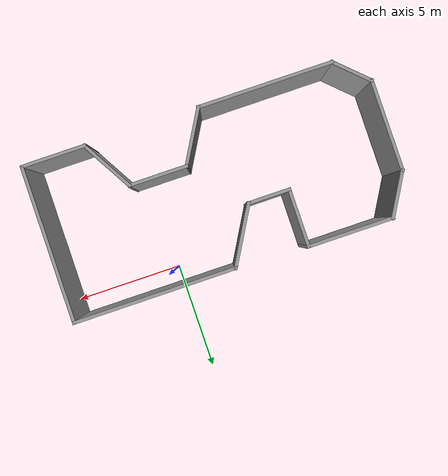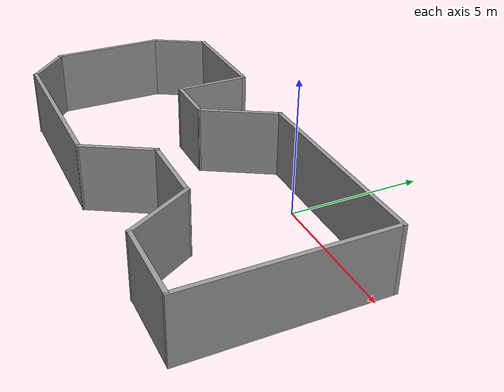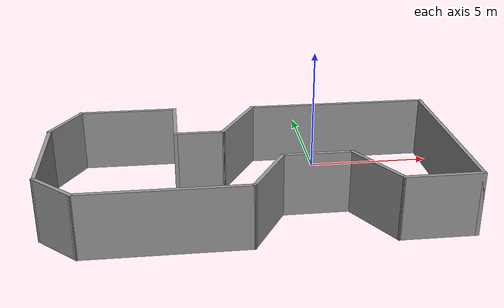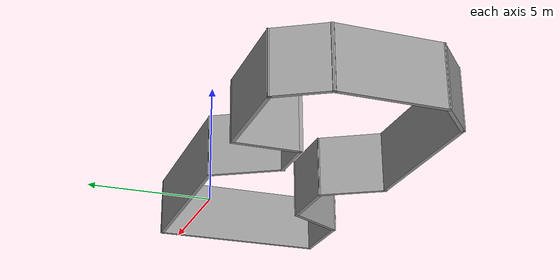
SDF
<?xml version='1.0'?>
<sdf version='1.7'>
  <model name='Custom_wall_v1'>
    <pose>-2.92727 -2.71778 0 0 -0 0</pose>
    <link name='Wall_43'>
      <collision name='Wall_43_Collision'>
        <geometry>
          <box>
            <size>6.25 0.15 2.5</size>
          </box>
        </geometry>
        <pose>0 0 1.25 0 -0 0</pose>
      </collision>
      <visual name='Wall_43_Visual'>
        <pose>0 0 1.25 0 -0 0</pose>
        <geometry>
          <box>
            <size>6.25 0.15 2.5</size>
          </box>
        </geometry>
        <material>
          <script>
            <uri>file://media/materials/scripts/gazebo.material</uri>
            <name>Gazebo/Grey</name>
          </script>
          <ambient>1 1 1 1</ambient>
        </material>
        <meta>
          <layer>0</layer>
        </meta>
      </visual>
      <pose>-3.32198 -3.61412 0 0 -0 0</pose>
    </link>
    <link name='Wall_44'>
      <collision name='Wall_44_Collision'>
        <geometry>
          <box>
            <size>2.75 0.15 2.5</size>
          </box>
        </geometry>
        <pose>0 0 1.25 0 -0 0</pose>
      </collision>
      <visual name='Wall_44_Visual'>
        <pose>0 0 1.25 0 -0 0</pose>
        <geometry>
          <box>
            <size>2.75 0.15 2.5</size>
          </box>
        </geometry>
        <material>
          <script>
            <uri>file://media/materials/scripts/gazebo.material</uri>
            <name>Gazebo/Grey</name>
          </script>
          <ambient>1 1 1 1</ambient>
        </material>
        <meta>
          <layer>0</layer>
        </meta>
      </visual>
      <pose>0.378019 -2.48829 0 0 -0 1.0472</pose>
    </link>
    <link name='Wall_45'>
      <collision name='Wall_45_Collision'>
        <geometry>
          <box>
            <size>2.75 0.15 2.5</size>
          </box>
        </geometry>
        <pose>0 0 1.25 0 -0 0</pose>
      </collision>
      <visual name='Wall_45_Visual'>
        <pose>0 0 1.25 0 -0 0</pose>
        <geometry>
          <box>
            <size>2.75 0.15 2.5</size>
          </box>
        </geometry>
        <material>
          <script>
            <uri>file://media/materials/scripts/gazebo.material</uri>
            <name>Gazebo/Grey</name>
          </script>
          <ambient>1 1 1 1</ambient>
        </material>
        <meta>
          <layer>0</layer>
        </meta>
      </visual>
      <pose>2.32802 -1.36245 0 0 -0 0</pose>
    </link>
    <link name='Wall_46'>
      <collision name='Wall_46_Collision'>
        <geometry>
          <box>
            <size>2.75 0.15 2.5</size>
          </box>
        </geometry>
        <pose>0 0 1.25 0 -0 0</pose>
      </collision>
      <visual name='Wall_46_Visual'>
        <pose>0 0 1.25 0 -0 0</pose>
        <geometry>
          <box>
            <size>2.75 0.15 2.5</size>
          </box>
        </geometry>
        <material>
          <script>
            <uri>file://media/materials/scripts/gazebo.material</uri>
            <name>Gazebo/Grey</name>
          </script>
          <ambient>1 1 1 1</ambient>
        </material>
        <meta>
          <layer>0</layer>
        </meta>
      </visual>
      <pose>4.27802 -2.48829 0 0 -0 -1.0472</pose>
    </link>
    <link name='Wall_47'>
      <collision name='Wall_47_Collision'>
        <geometry>
          <box>
            <size>3 0.15 2.5</size>
          </box>
        </geometry>
        <pose>0 0 1.25 0 -0 0</pose>
      </collision>
      <visual name='Wall_47_Visual'>
        <pose>0 0 1.25 0 -0 0</pose>
        <geometry>
          <box>
            <size>3 0.15 2.5</size>
          </box>
        </geometry>
        <material>
          <script>
            <uri>file://media/materials/scripts/gazebo.material</uri>
            <name>Gazebo/Grey</name>
          </script>
          <ambient>1 1 1 1</ambient>
        </material>
        <meta>
          <layer>0</layer>
        </meta>
      </visual>
      <pose>6.35302 -3.61412 0 0 -0 0</pose>
    </link>
    <link name='Wall_48'>
      <collision name='Wall_48_Collision'>
        <geometry>
          <box>
            <size>7.25 0.15 2.5</size>
          </box>
        </geometry>
        <pose>0 0 1.25 0 -0 0</pose>
      </collision>
      <visual name='Wall_48_Visual'>
        <pose>0 0 1.25 0 -0 0</pose>
        <geometry>
          <box>
            <size>7.25 0.15 2.5</size>
          </box>
        </geometry>
        <material>
          <script>
            <uri>file://media/materials/scripts/gazebo.material</uri>
            <name>Gazebo/Grey</name>
          </script>
          <ambient>1 1 1 1</ambient>
        </material>
        <meta>
          <layer>0</layer>
        </meta>
      </visual>
      <pose>7.77802 -0.064121 0 0 -0 1.5708</pose>
    </link>
    <link name='Wall_49'>
      <collision name='Wall_49_Collision'>
        <geometry>
          <box>
            <size>7.5 0.15 2.5</size>
          </box>
        </geometry>
        <pose>0 0 1.25 0 -0 0</pose>
      </collision>
      <visual name='Wall_49_Visual'>
        <pose>0 0 1.25 0 -0 0</pose>
        <geometry>
          <box>
            <size>7.5 0.15 2.5</size>
          </box>
        </geometry>
        <material>
          <script>
            <uri>file://media/materials/scripts/gazebo.material</uri>
            <name>Gazebo/Grey</name>
          </script>
          <ambient>1 1 1 1</ambient>
        </material>
        <meta>
          <layer>0</layer>
        </meta>
      </visual>
      <pose>4.10302 3.48588 0 0 -0 3.14159</pose>
    </link>
    <link name='Wall_50'>
      <collision name='Wall_50_Collision'>
        <geometry>
          <box>
            <size>3 0.15 2.5</size>
          </box>
        </geometry>
        <pose>0 0 1.25 0 -0 0</pose>
      </collision>
      <visual name='Wall_50_Visual'>
        <pose>0 0 1.25 0 -0 0</pose>
        <geometry>
          <box>
            <size>3 0.15 2.5</size>
          </box>
        </geometry>
        <material>
          <script>
            <uri>file://media/materials/scripts/gazebo.material</uri>
            <name>Gazebo/Grey</name>
          </script>
          <ambient>1 1 1 1</ambient>
        </material>
        <meta>
          <layer>0</layer>
        </meta>
      </visual>
      <pose>-0.284481 2.25179 0 0 -0 -2.0944</pose>
    </link>
    <link name='Wall_51'>
      <collision name='Wall_51_Collision'>
        <geometry>
          <box>
            <size>2 0.15 2.5</size>
          </box>
        </geometry>
        <pose>0 0 1.25 0 -0 0</pose>
      </collision>
      <visual name='Wall_51_Visual'>
        <pose>0 0 1.25 0 -0 0</pose>
        <geometry>
          <box>
            <size>2 0.15 2.5</size>
          </box>
        </geometry>
        <material>
          <script>
            <uri>file://media/materials/scripts/gazebo.material</uri>
            <name>Gazebo/Grey</name>
          </script>
          <ambient>1 1 1 1</ambient>
        </material>
        <meta>
          <layer>0</layer>
        </meta>
      </visual>
      <pose>-1.92198 1.01771 0 0 -0 3.14159</pose>
    </link>
    <link name='Wall_52'>
      <collision name='Wall_52_Collision'>
        <geometry>
          <box>
            <size>2.75 0.15 2.5</size>
          </box>
        </geometry>
        <pose>0 0 1.25 0 -0 0</pose>
      </collision>
      <visual name='Wall_52_Visual'>
        <pose>0 0 1.25 0 -0 0</pose>
        <geometry>
          <box>
            <size>2.75 0.15 2.5</size>
          </box>
        </geometry>
        <material>
          <script>
            <uri>file://media/materials/scripts/gazebo.material</uri>
            <name>Gazebo/Grey</name>
          </script>
          <ambient>1 1 1 1</ambient>
        </material>
        <meta>
          <layer>0</layer>
        </meta>
      </visual>
      <pose>-2.84698 2.31771 0 0 -0 1.5708</pose>
    </link>
    <link name='Wall_53'>
      <collision name='Wall_53_Collision'>
        <geometry>
          <box>
            <size>4 0.15 2.5</size>
          </box>
        </geometry>
        <pose>0 0 1.25 0 -0 0</pose>
      </collision>
      <visual name='Wall_53_Visual'>
        <pose>0 0 1.25 0 -0 0</pose>
        <geometry>
          <box>
            <size>4 0.15 2.5</size>
          </box>
        </geometry>
        <material>
          <script>
            <uri>file://media/materials/scripts/gazebo.material</uri>
            <name>Gazebo/Grey</name>
          </script>
          <ambient>1 1 1 1</ambient>
        </material>
        <meta>
          <layer>0</layer>
        </meta>
      </visual>
      <pose>-4.77198 3.61771 0 0 -0 3.14159</pose>
    </link>
    <link name='Wall_54'>
      <collision name='Wall_54_Collision'>
        <geometry>
          <box>
            <size>2.25 0.15 2.5</size>
          </box>
        </geometry>
        <pose>0 0 1.25 0 -0 0</pose>
      </collision>
      <visual name='Wall_54_Visual'>
        <pose>0 0 1.25 0 -0 0</pose>
        <geometry>
          <box>
            <size>2.25 0.15 2.5</size>
          </box>
        </geometry>
        <material>
          <script>
            <uri>file://media/materials/scripts/gazebo.material</uri>
            <name>Gazebo/Grey</name>
          </script>
          <ambient>1 1 1 1</ambient>
        </material>
        <meta>
          <layer>0</layer>
        </meta>
      </visual>
      <pose>-7.22198 2.70838 0 0 -0 -2.0944</pose>
    </link>
    <link name='Wall_55'>
      <collision name='Wall_55_Collision'>
        <geometry>
          <box>
            <size>4.25 0.15 2.5</size>
          </box>
        </geometry>
        <pose>0 0 1.25 0 -0 0</pose>
      </collision>
      <visual name='Wall_55_Visual'>
        <pose>0 0 1.25 0 -0 0</pose>
        <geometry>
          <box>
            <size>4.25 0.15 2.5</size>
          </box>
        </geometry>
        <material>
          <script>
            <uri>file://media/materials/scripts/gazebo.material</uri>
            <name>Gazebo/Grey</name>
          </script>
          <ambient>1 1 1 1</ambient>
        </material>
        <meta>
          <layer>0</layer>
        </meta>
      </visual>
      <pose>-7.74698 -0.250947 0 0 -0 -1.5708</pose>
    </link>
    <link name='Wall_56'>
      <collision name='Wall_56_Collision'>
        <geometry>
          <box>
            <size>2.05133 0.15 2.5</size>
          </box>
        </geometry>
        <pose>0 0 1.25 0 -0 0</pose>
      </collision>
      <visual name='Wall_56_Visual'>
        <pose>0 0 1.25 0 -0 0</pose>
        <geometry>
          <box>
            <size>2.05133 0.15 2.5</size>
          </box>
        </geometry>
        <material>
          <script>
            <uri>file://media/materials/scripts/gazebo.material</uri>
            <name>Gazebo/Grey</name>
          </script>
          <ambient>1 1 1 1</ambient>
        </material>
        <meta>
          <layer>0</layer>
        </meta>
      </visual>
      <pose>-7.05948 -2.95753 0 0 -0 -0.762403</pose>
    </link>
    <static>1</static>
  </model>
</sdf>
